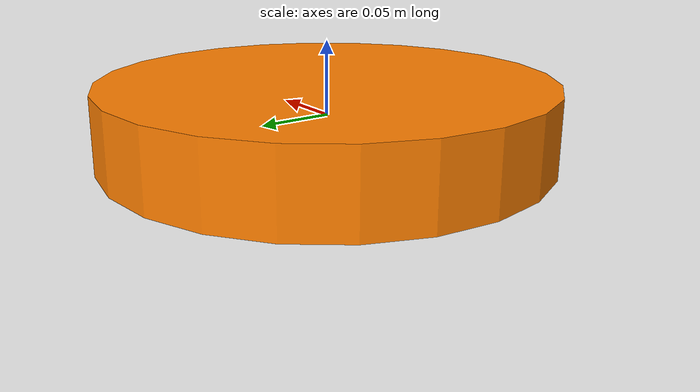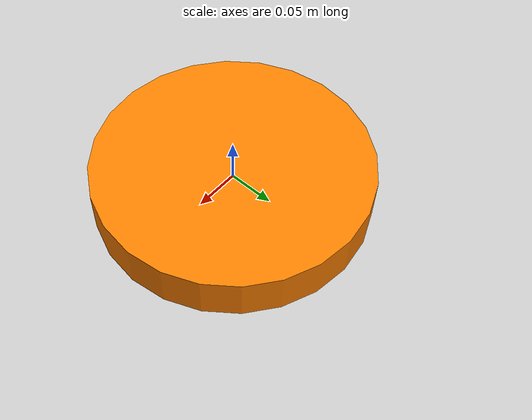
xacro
<?xml version="1.0"?>
<robot xmlns:xacro="http://www.ros.org/wiki/xacro" name="robot_sim">

  <link name="base_link">
    <visual>
      <geometry>
        <cylinder radius="0.15" length="0.05"/>
      </geometry>
      <material name="orange">
        <color rgba="1.0 0.5 0.0 1.0"/>
      </material>
    </visual>
    <collision>
      <geometry>
        <cylinder radius="0.15" length="0.05"/>
      </geometry>
    </collision>
    <inertial>
      <mass value="1.0"/>
      <inertia ixx="0.001" ixy="0.0" ixz="0.0" iyy="0.001" iyz="0.0" izz="0.001"/>
    </inertial>
  </link>

</robot>
